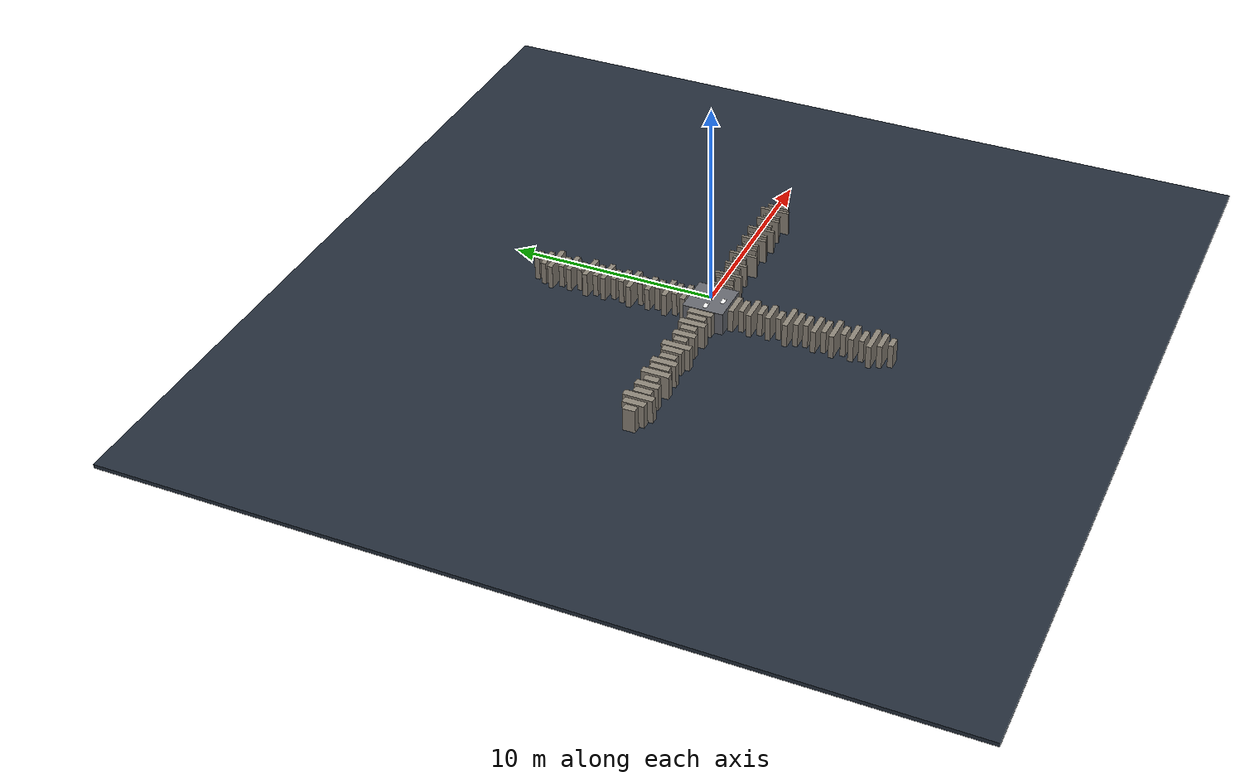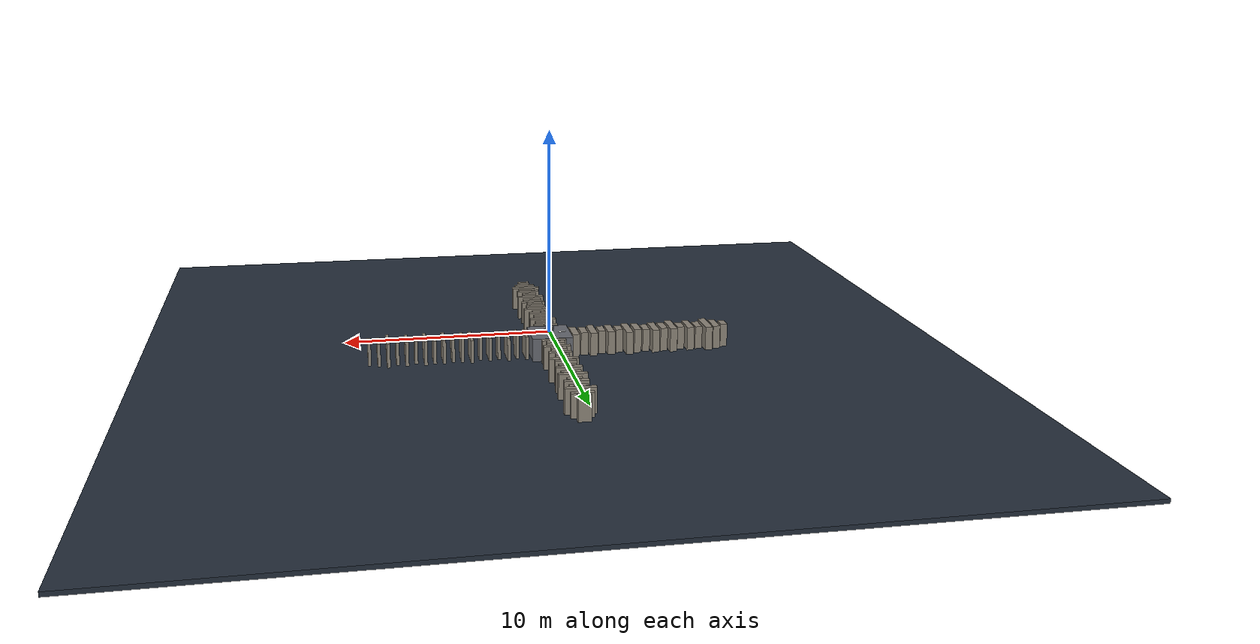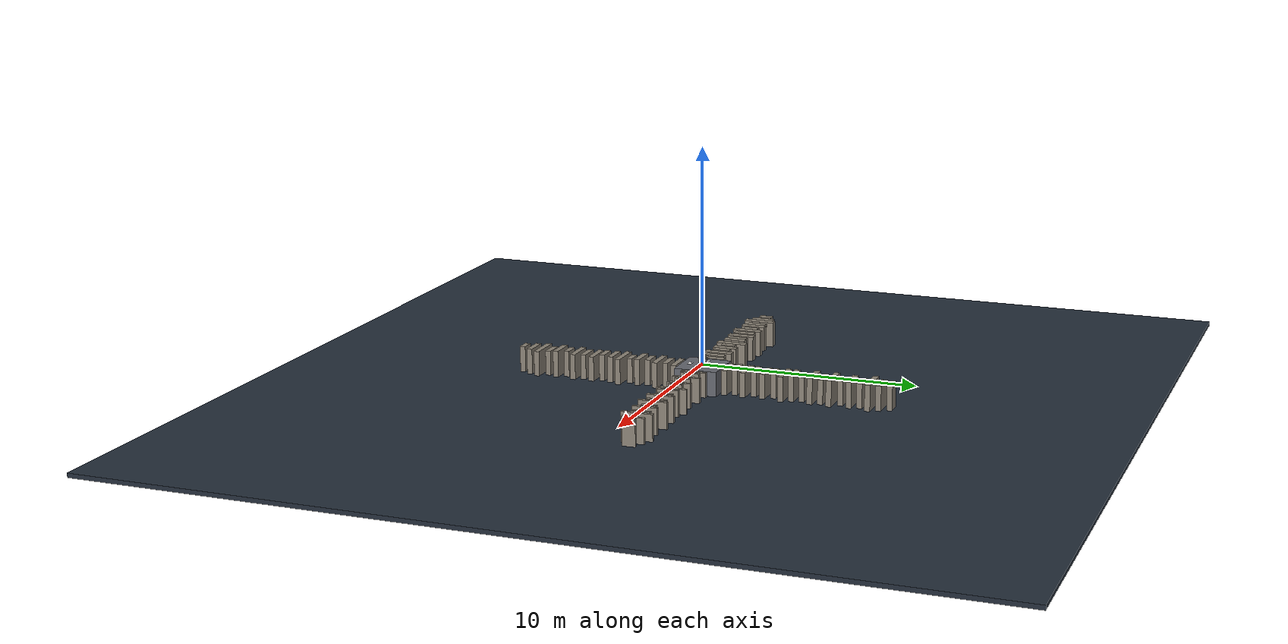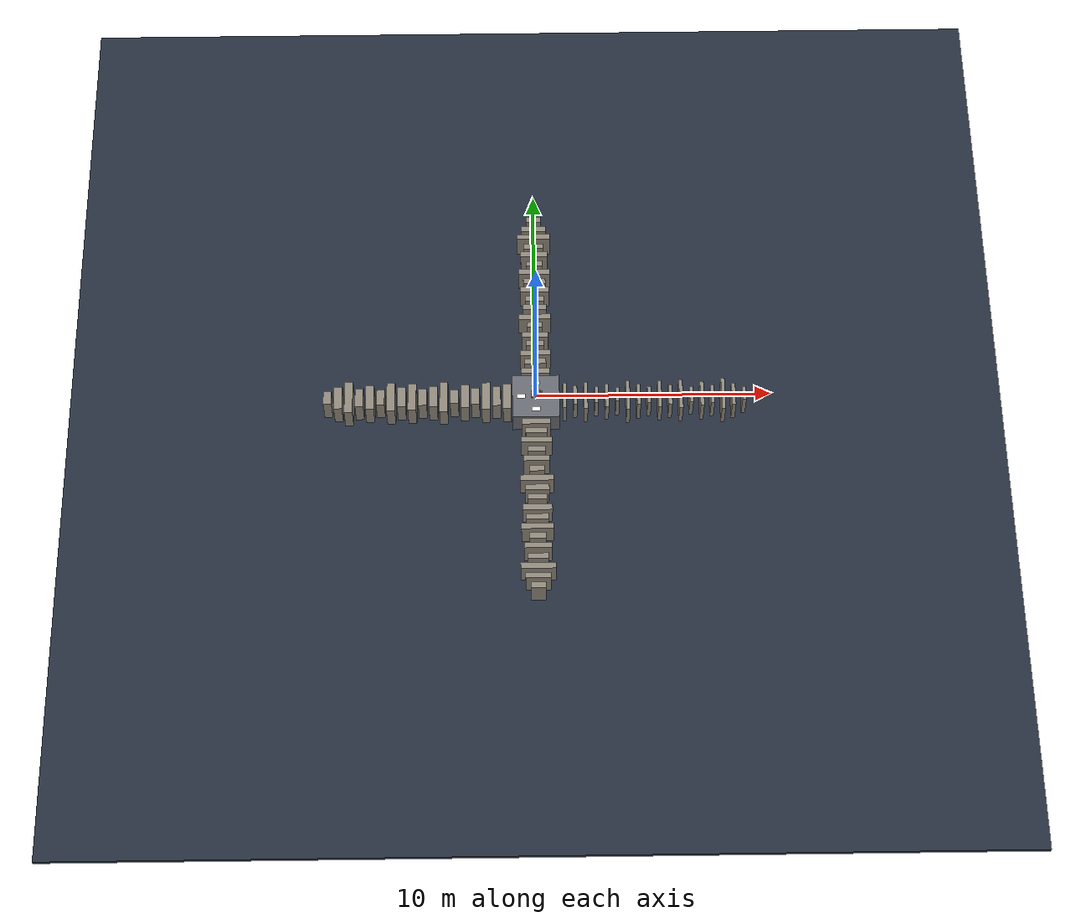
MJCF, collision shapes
<mujoco model="one_row_stones_cross_1_4_7_10">
  <include file="dog_502.xml"/>
  <statistic center="0 0 0.12" extent="1.35" />
  <visual>
    <headlight diffuse="0.6 0.6 0.6" ambient="0.3 0.3 0.3" specular="0 0 0" />
    <rgba haze="0.15 0.25 0.35 1" />
    <global azimuth="-130" elevation="-20" />
  </visual>
  <asset>
    <texture type="skybox" builtin="gradient" rgb1="0.3 0.5 0.7" rgb2="0 0 0" width="512" height="3072" />
    <texture type="2d" name="groundplane" builtin="checker" mark="edge" rgb1="0.18 0.22 0.28" rgb2="0.10 0.14 0.18" markrgb="0.8 0.8 0.8" width="300" height="300" />
    <material name="groundplane" texture="groundplane" texuniform="true" texrepeat="5 5" reflectance="0.0" />
    <texture name="tex_label_1" type="2d" file="./imgs/label_1.png" />
    <material name="mat_label_1" texture="tex_label_1" specular="0" shininess="0" emission="1" texrepeat="1 1" rgba="1 1 1 1" />
    <texture name="tex_label_7" type="2d" file="./imgs/label_7.png" />
    <material name="mat_label_7" texture="tex_label_7" specular="0" shininess="0" emission="1" texrepeat="1 1" rgba="1 1 1 1" />
    <texture name="tex_label_10" type="2d" file="./imgs/label_10.png" />
    <material name="mat_label_10" texture="tex_label_10" specular="0" shininess="0" emission="1" texrepeat="1 1" rgba="1 1 1 1" />
    <texture name="tex_label_4" type="2d" file="./imgs/label_4.png" />
    <material name="mat_label_4" texture="tex_label_4" specular="0" shininess="0" emission="1" texrepeat="1 1" rgba="1 1 1 1" />
  </asset>
  <worldbody>
    <light pos="0 0 1.5" dir="0 0 -1" directional="true" />

    <geom name="pit_floor" pos="0 0 -1.25" size="20 20 0.10" type="box" material="groundplane" />
    <geom name="hub" pos="0 0 -0.60" type="box" size="1.00 1.00 0.60" rgba="0.40 0.41 0.44 1" />

    <!-- neg_x direction, level 1, difficulty=0.1, one_row_stones -->
    <geom name="neg_x_stone_01" pos="-1.225 0 -0.5975" type="box" size="0.175 0.600 0.6025" rgba="0.55 0.52 0.47 1" />
    <geom name="neg_x_stone_02" pos="-1.675 0 -0.5900" type="box" size="0.175 0.450 0.6100" rgba="0.55 0.52 0.47 1" />
    <geom name="neg_x_stone_03" pos="-2.125 0 -0.5825" type="box" size="0.175 0.650 0.6175" rgba="0.55 0.52 0.47 1" />
    <geom name="neg_x_stone_04" pos="-2.575 0 -0.5750" type="box" size="0.175 0.375 0.6250" rgba="0.55 0.52 0.47 1" />
    <geom name="neg_x_stone_05" pos="-3.025 0 -0.5900" type="box" size="0.175 0.550 0.6100" rgba="0.55 0.52 0.47 1" />
    <geom name="neg_x_stone_06" pos="-3.475 0 -0.5825" type="box" size="0.175 0.325 0.6175" rgba="0.55 0.52 0.47 1" />
    <geom name="neg_x_stone_07" pos="-3.925 0 -0.5975" type="box" size="0.175 0.700 0.6025" rgba="0.55 0.52 0.47 1" />
    <geom name="neg_x_stone_08" pos="-4.375 0 -0.5750" type="box" size="0.175 0.500 0.6250" rgba="0.55 0.52 0.47 1" />
    <geom name="neg_x_stone_09" pos="-4.825 0 -0.5975" type="box" size="0.175 0.400 0.6025" rgba="0.55 0.52 0.47 1" />
    <geom name="neg_x_stone_10" pos="-5.275 0 -0.5900" type="box" size="0.175 0.625 0.6100" rgba="0.55 0.52 0.47 1" />
    <geom name="neg_x_stone_11" pos="-5.725 0 -0.5825" type="box" size="0.175 0.475 0.6175" rgba="0.55 0.52 0.47 1" />
    <geom name="neg_x_stone_12" pos="-6.175 0 -0.5750" type="box" size="0.175 0.675 0.6250" rgba="0.55 0.52 0.47 1" />
    <geom name="neg_x_stone_13" pos="-6.625 0 -0.5900" type="box" size="0.175 0.350 0.6100" rgba="0.55 0.52 0.47 1" />
    <geom name="neg_x_stone_14" pos="-7.075 0 -0.5825" type="box" size="0.175 0.575 0.6175" rgba="0.55 0.52 0.47 1" />
    <geom name="neg_x_stone_15" pos="-7.525 0 -0.5975" type="box" size="0.175 0.425 0.6025" rgba="0.55 0.52 0.47 1" />
    <geom name="neg_x_stone_16" pos="-7.975 0 -0.5750" type="box" size="0.175 0.725 0.6250" rgba="0.55 0.52 0.47 1" />
    <geom name="neg_x_stone_17" pos="-8.425 0 -0.5900" type="box" size="0.175 0.525 0.6100" rgba="0.55 0.52 0.47 1" />
    <geom name="neg_x_stone_18" pos="-8.875 0 -0.5825" type="box" size="0.175 0.300 0.6175" rgba="0.55 0.52 0.47 1" />
    <geom name="neg_x_label" pos="-0.62 0 0.002" type="box" size="0.18 0.10 0.0001" contype="0" conaffinity="0" group="1" material="mat_label_1" rgba="1 1 1 1" />

    <!-- pos_y direction, level 7, difficulty=0.7, one_row_stones -->
    <geom name="pos_y_stone_01" pos="0 1.225 -0.5975" type="box" size="0.600 0.125 0.6025" rgba="0.55 0.52 0.47 1" />
    <geom name="pos_y_stone_02" pos="0 1.675 -0.5675" type="box" size="0.450 0.125 0.6325" rgba="0.55 0.52 0.47 1" />
    <geom name="pos_y_stone_03" pos="0 2.125 -0.5975" type="box" size="0.650 0.125 0.6025" rgba="0.55 0.52 0.47 1" />
    <geom name="pos_y_stone_04" pos="0 2.575 -0.5675" type="box" size="0.375 0.125 0.6325" rgba="0.55 0.52 0.47 1" />
    <geom name="pos_y_stone_05" pos="0 3.025 -0.5975" type="box" size="0.550 0.125 0.6025" rgba="0.55 0.52 0.47 1" />
    <geom name="pos_y_stone_06" pos="0 3.475 -0.5675" type="box" size="0.325 0.125 0.6325" rgba="0.55 0.52 0.47 1" />
    <geom name="pos_y_stone_07" pos="0 3.925 -0.5975" type="box" size="0.700 0.125 0.6025" rgba="0.55 0.52 0.47 1" />
    <geom name="pos_y_stone_08" pos="0 4.375 -0.5675" type="box" size="0.500 0.125 0.6325" rgba="0.55 0.52 0.47 1" />
    <geom name="pos_y_stone_09" pos="0 4.825 -0.5975" type="box" size="0.400 0.125 0.6025" rgba="0.55 0.52 0.47 1" />
    <geom name="pos_y_stone_10" pos="0 5.275 -0.5675" type="box" size="0.625 0.125 0.6325" rgba="0.55 0.52 0.47 1" />
    <geom name="pos_y_stone_11" pos="0 5.725 -0.5975" type="box" size="0.475 0.125 0.6025" rgba="0.55 0.52 0.47 1" />
    <geom name="pos_y_stone_12" pos="0 6.175 -0.5675" type="box" size="0.675 0.125 0.6325" rgba="0.55 0.52 0.47 1" />
    <geom name="pos_y_stone_13" pos="0 6.625 -0.5975" type="box" size="0.350 0.125 0.6025" rgba="0.55 0.52 0.47 1" />
    <geom name="pos_y_stone_14" pos="0 7.075 -0.5675" type="box" size="0.575 0.125 0.6325" rgba="0.55 0.52 0.47 1" />
    <geom name="pos_y_stone_15" pos="0 7.525 -0.5975" type="box" size="0.425 0.125 0.6025" rgba="0.55 0.52 0.47 1" />
    <geom name="pos_y_stone_16" pos="0 7.975 -0.5675" type="box" size="0.725 0.125 0.6325" rgba="0.55 0.52 0.47 1" />
    <geom name="pos_y_stone_17" pos="0 8.425 -0.5975" type="box" size="0.525 0.125 0.6025" rgba="0.55 0.52 0.47 1" />
    <geom name="pos_y_stone_18" pos="0 8.875 -0.5675" type="box" size="0.300 0.125 0.6325" rgba="0.55 0.52 0.47 1" />
    <geom name="pos_y_label" pos="0 0.62 0.002" type="box" size="0.10 0.18 0.0001" quat="0.7071067811865476 0 0 0.7071067811865475" contype="0" conaffinity="0" group="1" material="mat_label_7" rgba="1 1 1 1" />

    <!-- pos_x direction, level 10, difficulty=0.9, one_row_stones -->
    <geom name="pos_x_stone_01" pos="1.225 0 -0.5975" type="box" size="0.075 0.600 0.6025" rgba="0.55 0.52 0.47 1" />
    <geom name="pos_x_stone_02" pos="1.675 0 -0.5675" type="box" size="0.075 0.450 0.6325" rgba="0.55 0.52 0.47 1" />
    <geom name="pos_x_stone_03" pos="2.125 0 -0.5975" type="box" size="0.075 0.650 0.6025" rgba="0.55 0.52 0.47 1" />
    <geom name="pos_x_stone_04" pos="2.575 0 -0.5675" type="box" size="0.075 0.375 0.6325" rgba="0.55 0.52 0.47 1" />
    <geom name="pos_x_stone_05" pos="3.025 0 -0.5975" type="box" size="0.075 0.550 0.6025" rgba="0.55 0.52 0.47 1" />
    <geom name="pos_x_stone_06" pos="3.475 0 -0.5675" type="box" size="0.075 0.325 0.6325" rgba="0.55 0.52 0.47 1" />
    <geom name="pos_x_stone_07" pos="3.925 0 -0.5975" type="box" size="0.075 0.700 0.6025" rgba="0.55 0.52 0.47 1" />
    <geom name="pos_x_stone_08" pos="4.375 0 -0.5675" type="box" size="0.075 0.500 0.6325" rgba="0.55 0.52 0.47 1" />
    <geom name="pos_x_stone_09" pos="4.825 0 -0.5975" type="box" size="0.075 0.400 0.6025" rgba="0.55 0.52 0.47 1" />
    <geom name="pos_x_stone_10" pos="5.275 0 -0.5675" type="box" size="0.075 0.625 0.6325" rgba="0.55 0.52 0.47 1" />
    <geom name="pos_x_stone_11" pos="5.725 0 -0.5975" type="box" size="0.075 0.475 0.6025" rgba="0.55 0.52 0.47 1" />
    <geom name="pos_x_stone_12" pos="6.175 0 -0.5675" type="box" size="0.075 0.675 0.6325" rgba="0.55 0.52 0.47 1" />
    <geom name="pos_x_stone_13" pos="6.625 0 -0.5975" type="box" size="0.075 0.350 0.6025" rgba="0.55 0.52 0.47 1" />
    <geom name="pos_x_stone_14" pos="7.075 0 -0.5675" type="box" size="0.075 0.575 0.6325" rgba="0.55 0.52 0.47 1" />
    <geom name="pos_x_stone_15" pos="7.525 0 -0.5975" type="box" size="0.075 0.425 0.6025" rgba="0.55 0.52 0.47 1" />
    <geom name="pos_x_stone_16" pos="7.975 0 -0.5675" type="box" size="0.075 0.725 0.6325" rgba="0.55 0.52 0.47 1" />
    <geom name="pos_x_stone_17" pos="8.425 0 -0.5975" type="box" size="0.075 0.525 0.6025" rgba="0.55 0.52 0.47 1" />
    <geom name="pos_x_stone_18" pos="8.875 0 -0.5675" type="box" size="0.075 0.300 0.6325" rgba="0.55 0.52 0.47 1" />
    <geom name="pos_x_label" pos="0.62 0 0.002" type="box" size="0.18 0.10 0.0001" contype="0" conaffinity="0" group="1" material="mat_label_10" rgba="1 1 1 1" />

    <!-- neg_y direction, level 4, difficulty=0.4, one_row_stones -->
    <geom name="neg_y_stone_01" pos="0 -1.225 -0.5975" type="box" size="0.600 0.125 0.6025" rgba="0.55 0.52 0.47 1" />
    <geom name="neg_y_stone_02" pos="0 -1.675 -0.5875" type="box" size="0.450 0.125 0.6125" rgba="0.55 0.52 0.47 1" />
    <geom name="neg_y_stone_03" pos="0 -2.125 -0.5775" type="box" size="0.650 0.125 0.6225" rgba="0.55 0.52 0.47 1" />
    <geom name="neg_y_stone_04" pos="0 -2.575 -0.5675" type="box" size="0.375 0.125 0.6325" rgba="0.55 0.52 0.47 1" />
    <geom name="neg_y_stone_05" pos="0 -3.025 -0.5575" type="box" size="0.550 0.125 0.6425" rgba="0.55 0.52 0.47 1" />
    <geom name="neg_y_stone_06" pos="0 -3.475 -0.5875" type="box" size="0.325 0.125 0.6125" rgba="0.55 0.52 0.47 1" />
    <geom name="neg_y_stone_07" pos="0 -3.925 -0.5775" type="box" size="0.700 0.125 0.6225" rgba="0.55 0.52 0.47 1" />
    <geom name="neg_y_stone_08" pos="0 -4.375 -0.5675" type="box" size="0.500 0.125 0.6325" rgba="0.55 0.52 0.47 1" />
    <geom name="neg_y_stone_09" pos="0 -4.825 -0.5575" type="box" size="0.400 0.125 0.6425" rgba="0.55 0.52 0.47 1" />
    <geom name="neg_y_stone_10" pos="0 -5.275 -0.5975" type="box" size="0.625 0.125 0.6025" rgba="0.55 0.52 0.47 1" />
    <geom name="neg_y_stone_11" pos="0 -5.725 -0.5875" type="box" size="0.475 0.125 0.6125" rgba="0.55 0.52 0.47 1" />
    <geom name="neg_y_stone_12" pos="0 -6.175 -0.5775" type="box" size="0.675 0.125 0.6225" rgba="0.55 0.52 0.47 1" />
    <geom name="neg_y_stone_13" pos="0 -6.625 -0.5675" type="box" size="0.350 0.125 0.6325" rgba="0.55 0.52 0.47 1" />
    <geom name="neg_y_stone_14" pos="0 -7.075 -0.5575" type="box" size="0.575 0.125 0.6425" rgba="0.55 0.52 0.47 1" />
    <geom name="neg_y_stone_15" pos="0 -7.525 -0.5975" type="box" size="0.425 0.125 0.6025" rgba="0.55 0.52 0.47 1" />
    <geom name="neg_y_stone_16" pos="0 -7.975 -0.5875" type="box" size="0.725 0.125 0.6125" rgba="0.55 0.52 0.47 1" />
    <geom name="neg_y_stone_17" pos="0 -8.425 -0.5775" type="box" size="0.525 0.125 0.6225" rgba="0.55 0.52 0.47 1" />
    <geom name="neg_y_stone_18" pos="0 -8.875 -0.5675" type="box" size="0.300 0.125 0.6325" rgba="0.55 0.52 0.47 1" />
    <geom name="neg_y_label" pos="0 -0.62 0.002" type="box" size="0.10 0.18 0.0001" quat="0.7071067811865476 0 0 -0.7071067811865475" contype="0" conaffinity="0" group="1" material="mat_label_4" rgba="1 1 1 1" />
  </worldbody>
</mujoco>

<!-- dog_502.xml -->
<mujoco model="dog_502_description">
  <compiler angle="radian" meshdir="../../../dog_502_description/meshes"/>

  <default>
    <joint damping="0.01" armature="0.01" frictionloss="0.02"/>
    <geom condim="3" friction="0.8 0.02 0.01"/>
    <default class="visual">
      <geom type="mesh" contype="0" conaffinity="0" group="2"/>
    </default>
  </default>

  <asset>
    <material name="light_grey" rgba="0.75294 0.75294 0.75294 1"/>
    <material name="black" rgba="0.1 0.1 0.1 1"/>
    <material name="red" rgba="1.0 0.0 0.0 1"/>

    <mesh name="base_link_mesh" file="base_link.STL"/>
    <mesh name="FL_hip_mesh" file="FL_hip.STL"/>
    <mesh name="FR_hip_mesh" file="FR_hip.STL"/>
    <mesh name="RL_hip_mesh" file="RL_hip.STL"/>
    <mesh name="RR_hip_mesh" file="RR_hip.STL"/>
    <mesh name="FL_thigh_mesh" file="FL_thigh.STL"/>
    <mesh name="FR_thigh_mesh" file="FR_thigh.STL"/>
    <mesh name="RL_thigh_mesh" file="RL_thigh.STL"/>
    <mesh name="RR_thigh_mesh" file="RR_thigh.STL"/>
    <mesh name="FL_calf_mesh" file="FL_calf.STL"/>
    <mesh name="FR_calf_mesh" file="FR_calf.STL"/>
    <mesh name="RL_calf_mesh" file="RL_calf.STL"/>
    <mesh name="RR_calf_mesh" file="RR_calf.STL"/>
  </asset>

  <worldbody>
    <body name="base" pos="0 0 0.31">
      <inertial pos="0.000037 0.001297 -0.002295" mass="4.142449" diaginertia="0.013374 0.031506 0.039388"/>
      <freejoint name="root"/>
      <geom mesh="base_link_mesh" material="light_grey" class="visual"/>
      <geom name="base_collision" type="box" size="0.15 0.075 0.04"/>

      <body name="camera" pos="0.255 0 0.04185" quat="0.984811 0 0.173672 0">
        <geom name="camera_visual" type="box" size="0.0125 0.06 0.0145" material="black" contype="0" conaffinity="0" group="2"/>
      </body>

      <body name="FL_hip" pos="0.1767 0.05 0">
        <inertial pos="-0.00457081 -0.00969999 0.0002578" mass="0.50149755" diaginertia="0.00011158 0.00021376 0.00016301"/>
        <joint name="FL_hip_joint" axis="1 0 0" range="-0.837758 0.837758" actuatorfrcrange="-17 17"/>
        <geom mesh="FL_hip_mesh" material="light_grey" class="visual"/>
        <geom name="FL_hip_collision" type="box" size="0.025 0.04 0.03"/>
        <body name="FL_thigh" pos="0 0.0684 0">
          <inertial pos="-0.00194747 -0.02547458 -0.01388663" mass="0.64867804" diaginertia="0.00138293 0.00137329 0.00032193"/>
          <joint name="FL_thigh_joint" axis="0 1 0" range="-1.5708 3.49066" actuatorfrcrange="-17 17"/>
          <geom mesh="FL_thigh_mesh" material="light_grey" class="visual"/>
          <geom name="FL_thigh_collision" type="box" pos="0 0 -0.09" quat="0.707107 0 0.707107 0" size="0.09 0.015 0.0175"/>
          <body name="FL_calf" pos="0 0 -0.18">
            <inertial pos="0.01310003 -0.00009903 -0.09935467" mass="0.06024443" diaginertia="0.0003599 0.00036988 0.00001166"/>
            <joint name="FL_calf_joint" axis="0 1 0" range="-2.72271 -0.837758" actuatorfrcrange="-17 17"/>
            <geom mesh="FL_calf_mesh" material="light_grey" class="visual"/>
            <geom name="FL_calf_collision_0" type="box" pos="0.013 0 -0.053" quat="0.988392 0 -0.151909 0" size="0.00825 0.0075 0.05106"/>
            <geom name="FL_calf_collision_1" type="box" pos="0.0285 0 -0.119" quat="0.997889 0 -0.064954 0" size="0.009 0.0075 0.03"/>
            <geom name="FL_calf_collision_2" type="box" pos="0.02021 0 -0.15878" quat="0.968912 0 0.247404 0" size="0.0125 0.0075 0.02"/>
            <geom name="FL_calf_collision_3" type="box" pos="0.03 0 -0.16" quat="0.998750 0 0.049979 0" size="0.01 0.0075 0.015"/>
            <body name="FL_foot" pos="0 0 -0.18">
              <inertial pos="0 0 0" mass="0.04" diaginertia="0.0000096 0.0000096 0.0000096"/>
              <geom name="FL_foot_visual" type="sphere" size="0.01" material="red" contype="0" conaffinity="0" group="2"/>
              <geom name="FL_foot_collision" type="sphere" pos="0.015 0 0" size="0.0225"/>
            </body>
          </body>
        </body>
      </body>

      <body name="FR_hip" pos="0.1767 -0.05 0">
        <inertial pos="-0.00444412 0.00969999 0.00054368" mass="0.50149755" diaginertia="0.00011122 0.00021421 0.00016383"/>
        <joint name="FR_hip_joint" axis="1 0 0" range="-0.837758 0.837758" actuatorfrcrange="-17 17"/>
        <geom mesh="FR_hip_mesh" material="light_grey" class="visual"/>
        <geom name="FR_hip_collision" type="box" size="0.025 0.04 0.03"/>
        <body name="FR_thigh" pos="0 -0.0684 0">
          <inertial pos="-0.00096707 0.02548196 -0.01388686" mass="0.64867934" diaginertia="0.00138275 0.00137516 0.00032358"/>
          <joint name="FR_thigh_joint" axis="0 1 0" range="-1.5708 3.49066" actuatorfrcrange="-17 17"/>
          <geom mesh="FR_thigh_mesh" material="light_grey" class="visual"/>
          <geom name="FR_thigh_collision" type="box" pos="0 0 -0.09" quat="0.707107 0 0.707107 0" size="0.09 0.015 0.0175"/>
          <body name="FR_calf" pos="0 0 -0.18">
            <inertial pos="0.01310003 0.00010097 -0.09935467" mass="0.06024443" diaginertia="0.0003599 0.00036988 0.00001166"/>
            <joint name="FR_calf_joint" axis="0 1 0" range="-2.72271 -0.837758" actuatorfrcrange="-17 17"/>
            <geom mesh="FR_calf_mesh" material="light_grey" class="visual"/>
            <geom name="FR_calf_collision_0" type="box" pos="0.013 0 -0.053" quat="0.988392 0 -0.151909 0" size="0.00825 0.0075 0.05106"/>
            <geom name="FR_calf_collision_1" type="box" pos="0.0285 0 -0.119" quat="0.997889 0 -0.064954 0" size="0.009 0.0075 0.03"/>
            <geom name="FR_calf_collision_2" type="box" pos="0.02021 0 -0.15878" quat="0.968912 0 0.247404 0" size="0.0125 0.0075 0.02"/>
            <geom name="FR_calf_collision_3" type="box" pos="0.03 0 -0.16" quat="0.998750 0 0.049979 0" size="0.01 0.0075 0.015"/>
            <body name="FR_foot" pos="0 0 -0.18">
              <inertial pos="0 0 0" mass="0.04" diaginertia="0.0000096 0.0000096 0.0000096"/>
              <geom name="FR_foot_visual" type="sphere" size="0.01" material="red" contype="0" conaffinity="0" group="2"/>
              <geom name="FR_foot_collision" type="sphere" pos="0.015 0 0" size="0.0225"/>
            </body>
          </body>
        </body>
      </body>

      <body name="RL_hip" pos="-0.1767 0.05 0">
        <inertial pos="0.00329874 -0.00969999 0.00094432" mass="0.50149755" diaginertia="0.00011271 0.00021836 0.00016649"/>
        <joint name="RL_hip_joint" axis="1 0 0" range="-0.837758 0.837758" actuatorfrcrange="-17 17"/>
        <geom mesh="RL_hip_mesh" material="light_grey" class="visual"/>
        <geom name="RL_hip_collision" type="box" size="0.025 0.04 0.03"/>
        <body name="RL_thigh" pos="0 0.0684 0">
          <inertial pos="-0.00120536 -0.02547458 -0.01523822" mass="0.64867804" diaginertia="0.00135600 0.00134928 0.00032485"/>
          <joint name="RL_thigh_joint" axis="0 1 0" range="-1.5708 3.49066" actuatorfrcrange="-17 17"/>
          <geom mesh="RL_thigh_mesh" material="light_grey" class="visual"/>
          <geom name="RL_thigh_collision" type="box" pos="0 0 -0.09" quat="0.707107 0 0.707107 0" size="0.09 0.015 0.0175"/>
          <body name="RL_calf" pos="0 0 -0.18">
            <inertial pos="0.01310003 -0.00009903 -0.09935467" mass="0.06024443" diaginertia="0.0003599 0.00036988 0.00001166"/>
            <joint name="RL_calf_joint" axis="0 1 0" range="-2.72271 -0.837758" actuatorfrcrange="-17 17"/>
            <geom mesh="RL_calf_mesh" material="light_grey" class="visual"/>
            <geom name="RL_calf_collision_0" type="box" pos="0.013 0 -0.053" quat="0.988392 0 -0.151909 0" size="0.00825 0.0075 0.05106"/>
            <geom name="RL_calf_collision_1" type="box" pos="0.0285 0 -0.119" quat="0.997889 0 -0.064954 0" size="0.009 0.0075 0.03"/>
            <geom name="RL_calf_collision_2" type="box" pos="0.02021 0 -0.15878" quat="0.968912 0 0.247404 0" size="0.0125 0.0075 0.02"/>
            <geom name="RL_calf_collision_3" type="box" pos="0.03 0 -0.16" quat="0.998750 0 0.049979 0" size="0.01 0.0075 0.015"/>
            <body name="RL_foot" pos="0 0 -0.18">
              <inertial pos="0 0 0" mass="0.04" diaginertia="0.0000096 0.0000096 0.0000096"/>
              <geom name="RL_foot_visual" type="sphere" size="0.01" material="red" contype="0" conaffinity="0" group="2"/>
              <geom name="RL_foot_collision" type="sphere" pos="0.015 0 0" size="0.0225"/>
            </body>
          </body>
        </body>
      </body>

      <body name="RR_hip" pos="-0.1767 -0.05 0">
        <inertial pos="0.00444412 0.00969999 -0.00054368" mass="0.50149755" diaginertia="0.00011122 0.00021421 0.00016383"/>
        <joint name="RR_hip_joint" axis="1 0 0" range="-0.837758 0.837758" actuatorfrcrange="-17 17"/>
        <geom mesh="RR_hip_mesh" material="light_grey" class="visual"/>
        <geom name="RR_hip_collision" type="box" size="0.025 0.04 0.03"/>
        <body name="RR_thigh" pos="0 -0.0684 0">
          <inertial pos="-0.00212669 0.02547451 -0.01490311" mass="0.64867934" diaginertia="0.00136777 0.00135386 0.00031766"/>
          <joint name="RR_thigh_joint" axis="0 1 0" range="-1.5708 3.49066" actuatorfrcrange="-17 17"/>
          <geom mesh="RR_thigh_mesh" material="light_grey" class="visual"/>
          <geom name="RR_thigh_collision" type="box" pos="0 0 -0.09" quat="0.707107 0 0.707107 0" size="0.09 0.015 0.0175"/>
          <body name="RR_calf" pos="0 0 -0.18">
            <inertial pos="0.01310003 0.00010097 -0.09935467" mass="0.06024443" diaginertia="0.0003599 0.00036988 0.00001166"/>
            <joint name="RR_calf_joint" axis="0 1 0" range="-2.72271 -0.837758" actuatorfrcrange="-17 17"/>
            <geom mesh="RR_calf_mesh" material="light_grey" class="visual"/>
            <geom name="RR_calf_collision_0" type="box" pos="0.013 0 -0.053" quat="0.988392 0 -0.151909 0" size="0.00825 0.0075 0.05106"/>
            <geom name="RR_calf_collision_1" type="box" pos="0.0285 0 -0.119" quat="0.997889 0 -0.064954 0" size="0.009 0.0075 0.03"/>
            <geom name="RR_calf_collision_2" type="box" pos="0.02021 0 -0.15878" quat="0.968912 0 0.247404 0" size="0.0125 0.0075 0.02"/>
            <geom name="RR_calf_collision_3" type="box" pos="0.03 0 -0.16" quat="0.998750 0 0.049979 0" size="0.01 0.0075 0.015"/>
            <body name="RR_foot" pos="0 0 -0.18">
              <inertial pos="0 0 0" mass="0.04" diaginertia="0.0000096 0.0000096 0.0000096"/>
              <geom name="RR_foot_visual" type="sphere" size="0.01" material="red" contype="0" conaffinity="0" group="2"/>
              <geom name="RR_foot_collision" type="sphere" pos="0.015 0 0" size="0.0225"/>
            </body>
          </body>
        </body>
      </body>
    </body>
  </worldbody>

  <actuator>
    <motor name="FL_hip" joint="FL_hip_joint" ctrllimited="true" ctrlrange="-17 17"/>
    <motor name="FL_thigh" joint="FL_thigh_joint" ctrllimited="true" ctrlrange="-17 17"/>
    <motor name="FL_calf" joint="FL_calf_joint" ctrllimited="true" ctrlrange="-17 17"/>
    <motor name="FR_hip" joint="FR_hip_joint" ctrllimited="true" ctrlrange="-17 17"/>
    <motor name="FR_thigh" joint="FR_thigh_joint" ctrllimited="true" ctrlrange="-17 17"/>
    <motor name="FR_calf" joint="FR_calf_joint" ctrllimited="true" ctrlrange="-17 17"/>
    <motor name="RL_hip" joint="RL_hip_joint" ctrllimited="true" ctrlrange="-17 17"/>
    <motor name="RL_thigh" joint="RL_thigh_joint" ctrllimited="true" ctrlrange="-17 17"/>
    <motor name="RL_calf" joint="RL_calf_joint" ctrllimited="true" ctrlrange="-17 17"/>
    <motor name="RR_hip" joint="RR_hip_joint" ctrllimited="true" ctrlrange="-17 17"/>
    <motor name="RR_thigh" joint="RR_thigh_joint" ctrllimited="true" ctrlrange="-17 17"/>
    <motor name="RR_calf" joint="RR_calf_joint" ctrllimited="true" ctrlrange="-17 17"/>
  </actuator>
</mujoco>
